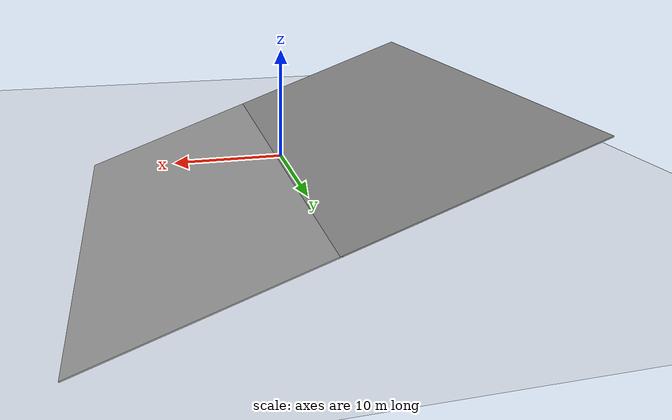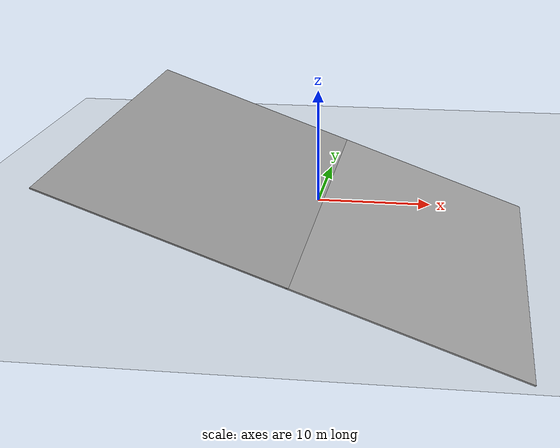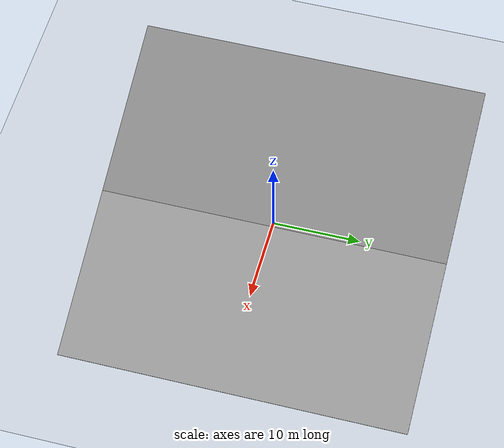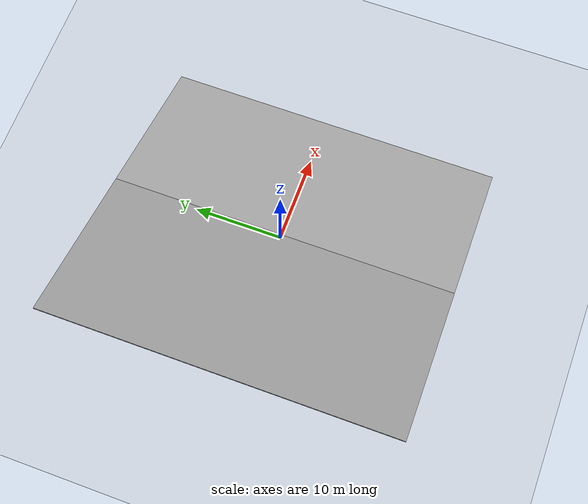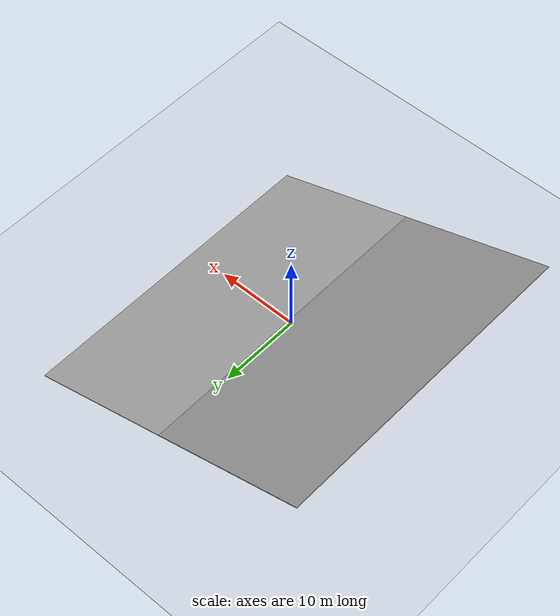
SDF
<?xml version="1.0" ?>
<sdf version="1.7">
  <world name="flat_and_slope20deg">
    <!-- 1) 光照 -->
    <light name="sun" type="directional">
      <cast_shadows>1</cast_shadows>
      <pose>0 0 10 0 0 0</pose>
      <diffuse>0.8 0.8 0.8 1</diffuse>
      <specular>0.2 0.2 0.2 1</specular>
      <direction>-0.5 0.1 -0.9</direction>
    </light>

    <!-- 2) 重力设置 -->
    <gravity>0 0 -9.8</gravity>

    <!-- 3) 平地模型 -->
    <include>
      <uri>model://ground_plane</uri>
    </include>

    <!-- 4) 倾斜坡面模型 -->
    <model name="slope20deg">
      <static>1</static>
      <link name="link">
        <!--
          旋转 20°: 绕 Y 轴 0.349066 rad
          厚度 0.1m，中点在 z=0，顶面在 z=+0.05m
        -->
        <pose>0 0 0.05 0 0.349066 0</pose>
        <collision name="collision">
          <geometry>
            <box>
              <size>40 40 0.1</size>
            </box>
          </geometry>
        </collision>
        <visual name="visual">
          <geometry>
            <box>
              <size>40 40 0.1</size>
            </box>
          </geometry>
          <material>
            <script>
              <uri>file://media/materials/scripts/gazebo.material</uri>
              <name>Gazebo/Grey</name>
            </script>
          </material>
        </visual>
      </link>
    </model>
  </world>
</sdf>
